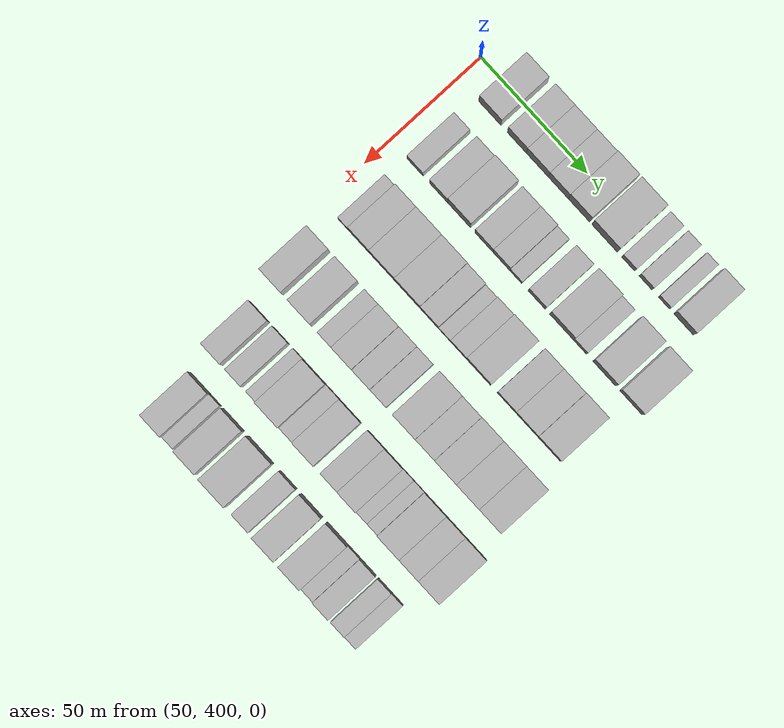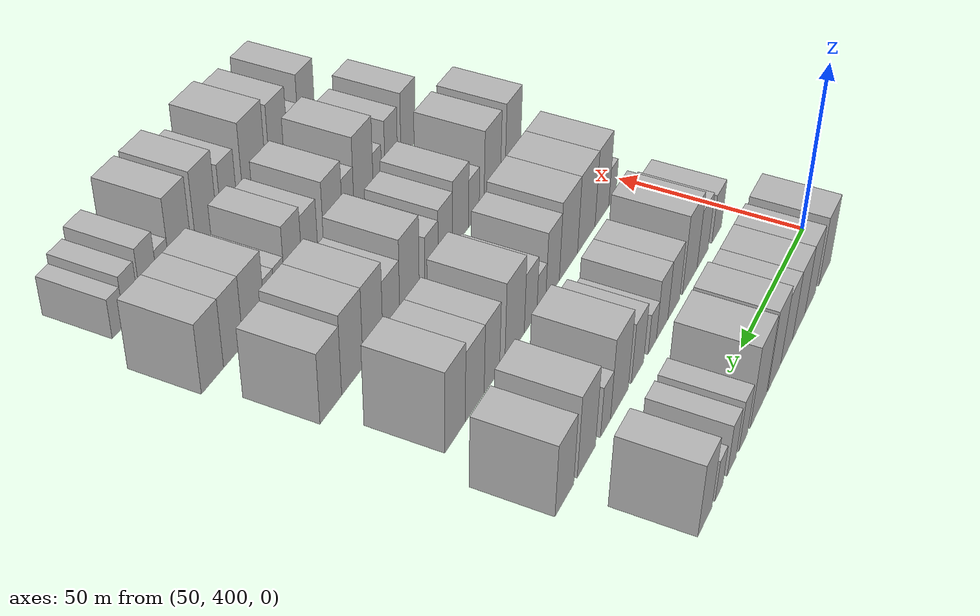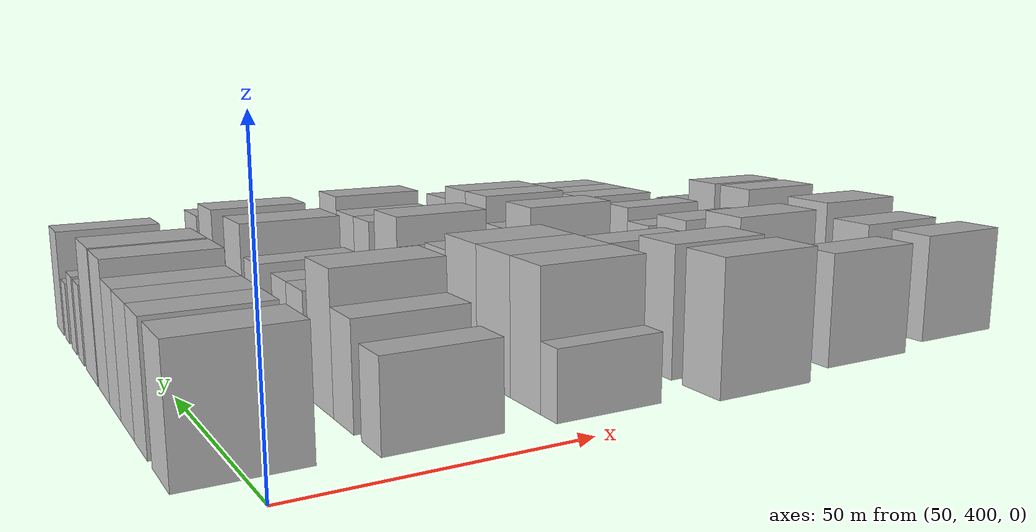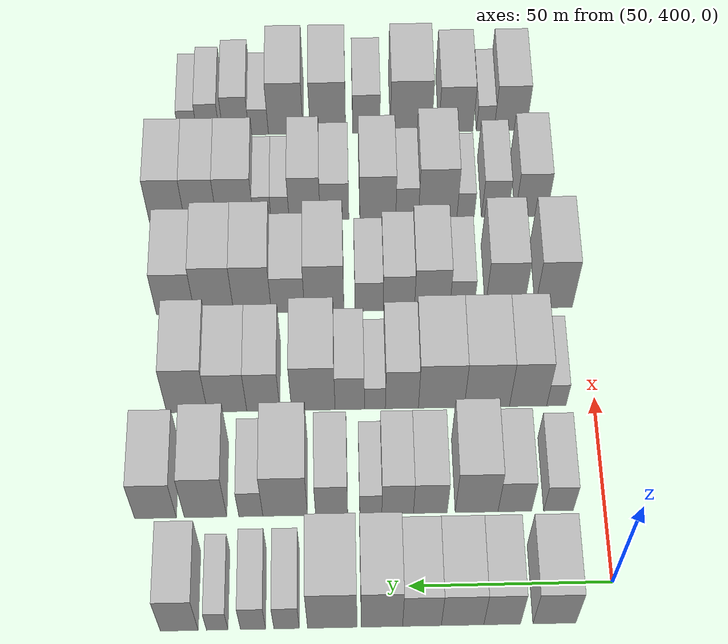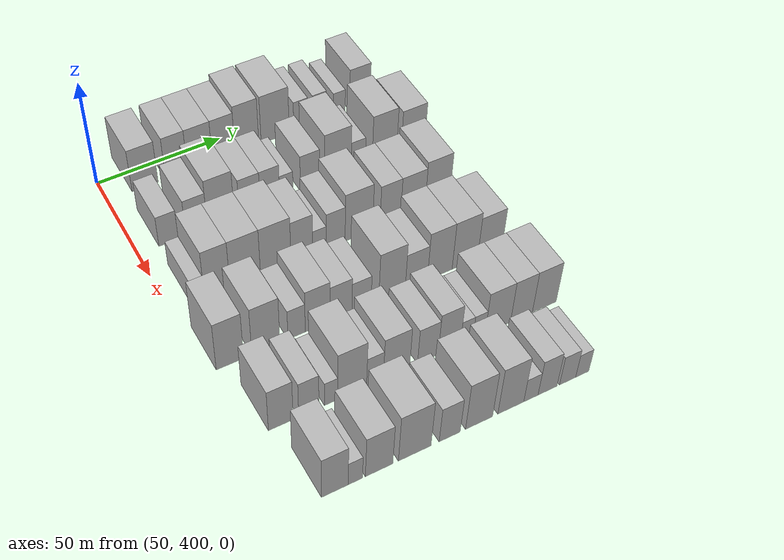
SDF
<sdf version="1.6">
 <world name="default">
  <model name="building_98">
   <static>1</static>
   <pose>50.0000 415.0534 0 0.000000 0.000000 0.000000</pose>
   <link name="link">
    <pose>0 0 10.50 0 0 0</pose>
    <collision name="collision"><geometry><box><size>20.0000 10.3913 21.0000</size></box></geometry></collision>
    <visual name="visual">
     <cast_shadows>0</cast_shadows>
     <geometry><box><size>20.0000 10.3913 21.0000</size></box></geometry>
     <material>
      <script>
       <uri>model://HANNAS_wall/materials/scripts</uri>
       <uri>model://HANNAS_wall/materials/textures</uri>
       <name>vrc/HANNAS_wall</name>
      </script>
     </material>
    </visual>
   </link>
  </model>
  <model name="building_99">
   <static>1</static>
   <pose>50.0000 427.6912 0 0.000000 0.000000 0.000000</pose>
   <link name="link">
    <pose>0 0 10.50 0 0 0</pose>
    <collision name="collision"><geometry><box><size>20.0000 8.8844 21.0000</size></box></geometry></collision>
    <visual name="visual">
     <cast_shadows>0</cast_shadows>
     <geometry><box><size>20.0000 8.8844 21.0000</size></box></geometry>
     <material>
      <script>
       <uri>model://HANNAS_wall/materials/scripts</uri>
       <uri>model://HANNAS_wall/materials/textures</uri>
       <name>vrc/HANNAS_wall</name>
      </script>
     </material>
    </visual>
   </link>
  </model>
  <model name="building_100">
   <static>1</static>
   <pose>50.0000 437.2732 0 0.000000 0.000000 0.000000</pose>
   <link name="link">
    <pose>0 0 10.50 0 0 0</pose>
    <collision name="collision"><geometry><box><size>20.0000 10.2796 21.0000</size></box></geometry></collision>
    <visual name="visual">
     <cast_shadows>0</cast_shadows>
     <geometry><box><size>20.0000 10.2796 21.0000</size></box></geometry>
     <material>
      <script>
       <uri>model://HANNAS_wall/materials/scripts</uri>
       <uri>model://HANNAS_wall/materials/textures</uri>
       <name>vrc/HANNAS_wall</name>
      </script>
     </material>
    </visual>
   </link>
  </model>
  <model name="building_101">
   <static>1</static>
   <pose>50.0000 447.0912 0 0.000000 0.000000 0.000000</pose>
   <link name="link">
    <pose>0 0 10.50 0 0 0</pose>
    <collision name="collision"><geometry><box><size>20.0000 9.3565 21.0000</size></box></geometry></collision>
    <visual name="visual">
     <cast_shadows>0</cast_shadows>
     <geometry><box><size>20.0000 9.3565 21.0000</size></box></geometry>
     <material>
      <script>
       <uri>model://HANNAS_wall/materials/scripts</uri>
       <uri>model://HANNAS_wall/materials/textures</uri>
       <name>vrc/HANNAS_wall</name>
      </script>
     </material>
    </visual>
   </link>
  </model>
  <model name="building_102">
   <static>1</static>
   <pose>50.0000 456.7532 0 0.000000 0.000000 0.000000</pose>
   <link name="link">
    <pose>0 0 12.00 0 0 0</pose>
    <collision name="collision"><geometry><box><size>20.0000 9.9675 24.0000</size></box></geometry></collision>
    <visual name="visual">
     <cast_shadows>0</cast_shadows>
     <geometry><box><size>20.0000 9.9675 24.0000</size></box></geometry>
     <material>
      <script>
       <uri>model://HANNAS_wall/materials/scripts</uri>
       <uri>model://HANNAS_wall/materials/textures</uri>
       <name>vrc/HANNAS_wall</name>
      </script>
     </material>
    </visual>
   </link>
  </model>
  <model name="building_103">
   <static>1</static>
   <pose>50.0000 468.7152 0 0.000000 0.000000 0.000000</pose>
   <link name="link">
    <pose>0 0 12.00 0 0 0</pose>
    <collision name="collision"><geometry><box><size>20.0000 11.9565 24.0000</size></box></geometry></collision>
    <visual name="visual">
     <cast_shadows>0</cast_shadows>
     <geometry><box><size>20.0000 11.9565 24.0000</size></box></geometry>
     <material>
      <script>
       <uri>model://HANNAS_wall/materials/scripts</uri>
       <uri>model://HANNAS_wall/materials/textures</uri>
       <name>vrc/HANNAS_wall</name>
      </script>
     </material>
    </visual>
   </link>
  </model>
  <model name="building_104">
   <static>1</static>
   <pose>50.0000 479.7528 0 0.000000 0.000000 0.000000</pose>
   <link name="link">
    <pose>0 0 7.50 0 0 0</pose>
    <collision name="collision"><geometry><box><size>20.0000 6.1187 15.0000</size></box></geometry></collision>
    <visual name="visual">
     <cast_shadows>0</cast_shadows>
     <geometry><box><size>20.0000 6.1187 15.0000</size></box></geometry>
     <material>
      <script>
       <uri>model://HANNAS_wall/materials/scripts</uri>
       <uri>model://HANNAS_wall/materials/textures</uri>
       <name>vrc/HANNAS_wall</name>
      </script>
     </material>
    </visual>
   </link>
  </model>
  <model name="building_105">
   <static>1</static>
   <pose>50.0000 487.8474 0 0.000000 0.000000 0.000000</pose>
   <link name="link">
    <pose>0 0 7.50 0 0 0</pose>
    <collision name="collision"><geometry><box><size>20.0000 6.0703 15.0000</size></box></geometry></collision>
    <visual name="visual">
     <cast_shadows>0</cast_shadows>
     <geometry><box><size>20.0000 6.0703 15.0000</size></box></geometry>
     <material>
      <script>
       <uri>model://HANNAS_wall/materials/scripts</uri>
       <uri>model://HANNAS_wall/materials/textures</uri>
       <name>vrc/HANNAS_wall</name>
      </script>
     </material>
    </visual>
   </link>
  </model>
  <model name="building_106">
   <static>1</static>
   <pose>50.0000 496.4762 0 0.000000 0.000000 0.000000</pose>
   <link name="link">
    <pose>0 0 6.00 0 0 0</pose>
    <collision name="collision"><geometry><box><size>20.0000 5.1874 12.0000</size></box></geometry></collision>
    <visual name="visual">
     <cast_shadows>0</cast_shadows>
     <geometry><box><size>20.0000 5.1874 12.0000</size></box></geometry>
     <material>
      <script>
       <uri>model://HANNAS_wall/materials/scripts</uri>
       <uri>model://HANNAS_wall/materials/textures</uri>
       <name>vrc/HANNAS_wall</name>
      </script>
     </material>
    </visual>
   </link>
  </model>
  <model name="building_107">
   <static>1</static>
   <pose>50.0000 505.6253 0 0.000000 0.000000 0.000000</pose>
   <link name="link">
    <pose>0 0 10.50 0 0 0</pose>
    <collision name="collision"><geometry><box><size>20.0000 9.1107 21.0000</size></box></geometry></collision>
    <visual name="visual">
     <cast_shadows>0</cast_shadows>
     <geometry><box><size>20.0000 9.1107 21.0000</size></box></geometry>
     <material>
      <script>
       <uri>model://HANNAS_wall/materials/scripts</uri>
       <uri>model://HANNAS_wall/materials/textures</uri>
       <name>vrc/HANNAS_wall</name>
      </script>
     </material>
    </visual>
   </link>
  </model>
  <model name="building_210">
   <static>1</static>
   <pose>79.0000 411.7813 0 0.000000 0.000000 0.000000</pose>
   <link name="link">
    <pose>0 0 7.50 0 0 0</pose>
    <collision name="collision"><geometry><box><size>20.0000 7.4495 15.0000</size></box></geometry></collision>
    <visual name="visual">
     <cast_shadows>0</cast_shadows>
     <geometry><box><size>20.0000 7.4495 15.0000</size></box></geometry>
     <material>
      <script>
       <uri>model://HANNAS_wall/materials/scripts</uri>
       <uri>model://HANNAS_wall/materials/textures</uri>
       <name>vrc/HANNAS_wall</name>
      </script>
     </material>
    </visual>
   </link>
  </model>
  <model name="building_211">
   <static>1</static>
   <pose>79.0000 422.7378 0 0.000000 0.000000 0.000000</pose>
   <link name="link">
    <pose>0 0 9.00 0 0 0</pose>
    <collision name="collision"><geometry><box><size>20.0000 8.4635 18.0000</size></box></geometry></collision>
    <visual name="visual">
     <cast_shadows>0</cast_shadows>
     <geometry><box><size>20.0000 8.4635 18.0000</size></box></geometry>
     <material>
      <script>
       <uri>model://HANNAS_wall/materials/scripts</uri>
       <uri>model://HANNAS_wall/materials/textures</uri>
       <name>vrc/HANNAS_wall</name>
      </script>
     </material>
    </visual>
   </link>
  </model>
  <model name="building_212">
   <static>1</static>
   <pose>79.0000 432.3272 0 0.000000 0.000000 0.000000</pose>
   <link name="link">
    <pose>0 0 12.00 0 0 0</pose>
    <collision name="collision"><geometry><box><size>20.0000 10.7153 24.0000</size></box></geometry></collision>
    <visual name="visual">
     <cast_shadows>0</cast_shadows>
     <geometry><box><size>20.0000 10.7153 24.0000</size></box></geometry>
     <material>
      <script>
       <uri>model://HANNAS_wall/materials/scripts</uri>
       <uri>model://HANNAS_wall/materials/textures</uri>
       <name>vrc/HANNAS_wall</name>
      </script>
     </material>
    </visual>
   </link>
  </model>
  <model name="building_213">
   <static>1</static>
   <pose>79.0000 443.9112 0 0.000000 0.000000 0.000000</pose>
   <link name="link">
    <pose>0 0 9.00 0 0 0</pose>
    <collision name="collision"><geometry><box><size>20.0000 8.4527 18.0000</size></box></geometry></collision>
    <visual name="visual">
     <cast_shadows>0</cast_shadows>
     <geometry><box><size>20.0000 8.4527 18.0000</size></box></geometry>
     <material>
      <script>
       <uri>model://HANNAS_wall/materials/scripts</uri>
       <uri>model://HANNAS_wall/materials/textures</uri>
       <name>vrc/HANNAS_wall</name>
      </script>
     </material>
    </visual>
   </link>
  </model>
  <model name="building_214">
   <static>1</static>
   <pose>79.0000 452.0993 0 0.000000 0.000000 0.000000</pose>
   <link name="link">
    <pose>0 0 9.00 0 0 0</pose>
    <collision name="collision"><geometry><box><size>20.0000 7.9235 18.0000</size></box></geometry></collision>
    <visual name="visual">
     <cast_shadows>0</cast_shadows>
     <geometry><box><size>20.0000 7.9235 18.0000</size></box></geometry>
     <material>
      <script>
       <uri>model://HANNAS_wall/materials/scripts</uri>
       <uri>model://HANNAS_wall/materials/textures</uri>
       <name>vrc/HANNAS_wall</name>
      </script>
     </material>
    </visual>
   </link>
  </model>
  <model name="building_215">
   <static>1</static>
   <pose>79.0000 458.8231 0 0.000000 0.000000 0.000000</pose>
   <link name="link">
    <pose>0 0 6.00 0 0 0</pose>
    <collision name="collision"><geometry><box><size>20.0000 5.5241 12.0000</size></box></geometry></collision>
    <visual name="visual">
     <cast_shadows>0</cast_shadows>
     <geometry><box><size>20.0000 5.5241 12.0000</size></box></geometry>
     <material>
      <script>
       <uri>model://HANNAS_wall/materials/scripts</uri>
       <uri>model://HANNAS_wall/materials/textures</uri>
       <name>vrc/HANNAS_wall</name>
      </script>
     </material>
    </visual>
   </link>
  </model>
  <model name="building_216">
   <static>1</static>
   <pose>79.0000 468.6043 0 0.000000 0.000000 0.000000</pose>
   <link name="link">
    <pose>0 0 9.00 0 0 0</pose>
    <collision name="collision"><geometry><box><size>20.0000 8.0382 18.0000</size></box></geometry></collision>
    <visual name="visual">
     <cast_shadows>0</cast_shadows>
     <geometry><box><size>20.0000 8.0382 18.0000</size></box></geometry>
     <material>
      <script>
       <uri>model://HANNAS_wall/materials/scripts</uri>
       <uri>model://HANNAS_wall/materials/textures</uri>
       <name>vrc/HANNAS_wall</name>
      </script>
     </material>
    </visual>
   </link>
  </model>
  <model name="building_217">
   <static>1</static>
   <pose>79.0000 480.2124 0 0.000000 0.000000 0.000000</pose>
   <link name="link">
    <pose>0 0 12.00 0 0 0</pose>
    <collision name="collision"><geometry><box><size>20.0000 11.1780 24.0000</size></box></geometry></collision>
    <visual name="visual">
     <cast_shadows>0</cast_shadows>
     <geometry><box><size>20.0000 11.1780 24.0000</size></box></geometry>
     <material>
      <script>
       <uri>model://HANNAS_wall/materials/scripts</uri>
       <uri>model://HANNAS_wall/materials/textures</uri>
       <name>vrc/HANNAS_wall</name>
      </script>
     </material>
    </visual>
   </link>
  </model>
  <model name="building_218">
   <static>1</static>
   <pose>79.0000 488.8057 0 0.000000 0.000000 0.000000</pose>
   <link name="link">
    <pose>0 0 7.50 0 0 0</pose>
    <collision name="collision"><geometry><box><size>20.0000 6.0087 15.0000</size></box></geometry></collision>
    <visual name="visual">
     <cast_shadows>0</cast_shadows>
     <geometry><box><size>20.0000 6.0087 15.0000</size></box></geometry>
     <material>
      <script>
       <uri>model://HANNAS_wall/materials/scripts</uri>
       <uri>model://HANNAS_wall/materials/textures</uri>
       <name>vrc/HANNAS_wall</name>
      </script>
     </material>
    </visual>
   </link>
  </model>
  <model name="building_219">
   <static>1</static>
   <pose>79.0000 500.1120 0 0.000000 0.000000 0.000000</pose>
   <link name="link">
    <pose>0 0 12.00 0 0 0</pose>
    <collision name="collision"><geometry><box><size>20.0000 10.6038 24.0000</size></box></geometry></collision>
    <visual name="visual">
     <cast_shadows>0</cast_shadows>
     <geometry><box><size>20.0000 10.6038 24.0000</size></box></geometry>
     <material>
      <script>
       <uri>model://HANNAS_wall/materials/scripts</uri>
       <uri>model://HANNAS_wall/materials/textures</uri>
       <name>vrc/HANNAS_wall</name>
      </script>
     </material>
    </visual>
   </link>
  </model>
  <model name="building_220">
   <static>1</static>
   <pose>79.0000 512.6189 0 0.000000 0.000000 0.000000</pose>
   <link name="link">
    <pose>0 0 10.50 0 0 0</pose>
    <collision name="collision"><geometry><box><size>20.0000 10.4100 21.0000</size></box></geometry></collision>
    <visual name="visual">
     <cast_shadows>0</cast_shadows>
     <geometry><box><size>20.0000 10.4100 21.0000</size></box></geometry>
     <material>
      <script>
       <uri>model://HANNAS_wall/materials/scripts</uri>
       <uri>model://HANNAS_wall/materials/textures</uri>
       <name>vrc/HANNAS_wall</name>
      </script>
     </material>
    </visual>
   </link>
  </model>
  <model name="building_317">
   <static>1</static>
   <pose>108.0000 410.0519 0 0.000000 0.000000 0.000000</pose>
   <link name="link">
    <pose>0 0 6.00 0 0 0</pose>
    <collision name="collision"><geometry><box><size>20.0000 5.0231 12.0000</size></box></geometry></collision>
    <visual name="visual">
     <cast_shadows>0</cast_shadows>
     <geometry><box><size>20.0000 5.0231 12.0000</size></box></geometry>
     <material>
      <script>
       <uri>model://HANNAS_wall/materials/scripts</uri>
       <uri>model://HANNAS_wall/materials/textures</uri>
       <name>vrc/HANNAS_wall</name>
      </script>
     </material>
    </visual>
   </link>
  </model>
  <model name="building_318">
   <static>1</static>
   <pose>108.0000 417.3986 0 0.000000 0.000000 0.000000</pose>
   <link name="link">
    <pose>0 0 12.00 0 0 0</pose>
    <collision name="collision"><geometry><box><size>20.0000 9.6702 24.0000</size></box></geometry></collision>
    <visual name="visual">
     <cast_shadows>0</cast_shadows>
     <geometry><box><size>20.0000 9.6702 24.0000</size></box></geometry>
     <material>
      <script>
       <uri>model://HANNAS_wall/materials/scripts</uri>
       <uri>model://HANNAS_wall/materials/textures</uri>
       <name>vrc/HANNAS_wall</name>
      </script>
     </material>
    </visual>
   </link>
  </model>
  <model name="building_319">
   <static>1</static>
   <pose>108.0000 428.1016 0 0.000000 0.000000 0.000000</pose>
   <link name="link">
    <pose>0 0 12.00 0 0 0</pose>
    <collision name="collision"><geometry><box><size>20.0000 11.7359 24.0000</size></box></geometry></collision>
    <visual name="visual">
     <cast_shadows>0</cast_shadows>
     <geometry><box><size>20.0000 11.7359 24.0000</size></box></geometry>
     <material>
      <script>
       <uri>model://HANNAS_wall/materials/scripts</uri>
       <uri>model://HANNAS_wall/materials/textures</uri>
       <name>vrc/HANNAS_wall</name>
      </script>
     </material>
    </visual>
   </link>
  </model>
  <model name="building_320">
   <static>1</static>
   <pose>108.0000 439.9159 0 0.000000 0.000000 0.000000</pose>
   <link name="link">
    <pose>0 0 12.00 0 0 0</pose>
    <collision name="collision"><geometry><box><size>20.0000 11.8927 24.0000</size></box></geometry></collision>
    <visual name="visual">
     <cast_shadows>0</cast_shadows>
     <geometry><box><size>20.0000 11.8927 24.0000</size></box></geometry>
     <material>
      <script>
       <uri>model://HANNAS_wall/materials/scripts</uri>
       <uri>model://HANNAS_wall/materials/textures</uri>
       <name>vrc/HANNAS_wall</name>
      </script>
     </material>
    </visual>
   </link>
  </model>
  <model name="building_321">
   <static>1</static>
   <pose>108.0000 450.1446 0 0.000000 0.000000 0.000000</pose>
   <link name="link">
    <pose>0 0 10.50 0 0 0</pose>
    <collision name="collision"><geometry><box><size>20.0000 8.5648 21.0000</size></box></geometry></collision>
    <visual name="visual">
     <cast_shadows>0</cast_shadows>
     <geometry><box><size>20.0000 8.5648 21.0000</size></box></geometry>
     <material>
      <script>
       <uri>model://HANNAS_wall/materials/scripts</uri>
       <uri>model://HANNAS_wall/materials/textures</uri>
       <name>vrc/HANNAS_wall</name>
      </script>
     </material>
    </visual>
   </link>
  </model>
  <model name="building_322">
   <static>1</static>
   <pose>108.0000 457.1525 0 0.000000 0.000000 0.000000</pose>
   <link name="link">
    <pose>0 0 6.00 0 0 0</pose>
    <collision name="collision"><geometry><box><size>20.0000 5.4508 12.0000</size></box></geometry></collision>
    <visual name="visual">
     <cast_shadows>0</cast_shadows>
     <geometry><box><size>20.0000 5.4508 12.0000</size></box></geometry>
     <material>
      <script>
       <uri>model://HANNAS_wall/materials/scripts</uri>
       <uri>model://HANNAS_wall/materials/textures</uri>
       <name>vrc/HANNAS_wall</name>
      </script>
     </material>
    </visual>
   </link>
  </model>
  <model name="building_323">
   <static>1</static>
   <pose>108.0000 463.6574 0 0.000000 0.000000 0.000000</pose>
   <link name="link">
    <pose>0 0 9.00 0 0 0</pose>
    <collision name="collision"><geometry><box><size>20.0000 7.5591 18.0000</size></box></geometry></collision>
    <visual name="visual">
     <cast_shadows>0</cast_shadows>
     <geometry><box><size>20.0000 7.5591 18.0000</size></box></geometry>
     <material>
      <script>
       <uri>model://HANNAS_wall/materials/scripts</uri>
       <uri>model://HANNAS_wall/materials/textures</uri>
       <name>vrc/HANNAS_wall</name>
      </script>
     </material>
    </visual>
   </link>
  </model>
  <model name="building_324">
   <static>1</static>
   <pose>108.0000 473.0711 0 0.000000 0.000000 0.000000</pose>
   <link name="link">
    <pose>0 0 12.00 0 0 0</pose>
    <collision name="collision"><geometry><box><size>20.0000 11.2682 24.0000</size></box></geometry></collision>
    <visual name="visual">
     <cast_shadows>0</cast_shadows>
     <geometry><box><size>20.0000 11.2682 24.0000</size></box></geometry>
     <material>
      <script>
       <uri>model://HANNAS_wall/materials/scripts</uri>
       <uri>model://HANNAS_wall/materials/textures</uri>
       <name>vrc/HANNAS_wall</name>
      </script>
     </material>
    </visual>
   </link>
  </model>
  <model name="building_325">
   <static>1</static>
   <pose>108.0000 485.9955 0 0.000000 0.000000 0.000000</pose>
   <link name="link">
    <pose>0 0 10.50 0 0 0</pose>
    <collision name="collision"><geometry><box><size>20.0000 8.5806 21.0000</size></box></geometry></collision>
    <visual name="visual">
     <cast_shadows>0</cast_shadows>
     <geometry><box><size>20.0000 8.5806 21.0000</size></box></geometry>
     <material>
      <script>
       <uri>model://HANNAS_wall/materials/scripts</uri>
       <uri>model://HANNAS_wall/materials/textures</uri>
       <name>vrc/HANNAS_wall</name>
      </script>
     </material>
    </visual>
   </link>
  </model>
  <model name="building_326">
   <static>1</static>
   <pose>108.0000 495.3850 0 0.000000 0.000000 0.000000</pose>
   <link name="link">
    <pose>0 0 10.50 0 0 0</pose>
    <collision name="collision"><geometry><box><size>20.0000 10.1984 21.0000</size></box></geometry></collision>
    <visual name="visual">
     <cast_shadows>0</cast_shadows>
     <geometry><box><size>20.0000 10.1984 21.0000</size></box></geometry>
     <material>
      <script>
       <uri>model://HANNAS_wall/materials/scripts</uri>
       <uri>model://HANNAS_wall/materials/textures</uri>
       <name>vrc/HANNAS_wall</name>
      </script>
     </material>
    </visual>
   </link>
  </model>
  <model name="building_327">
   <static>1</static>
   <pose>108.0000 505.7415 0 0.000000 0.000000 0.000000</pose>
   <link name="link">
    <pose>0 0 12.00 0 0 0</pose>
    <collision name="collision"><geometry><box><size>20.0000 10.5147 24.0000</size></box></geometry></collision>
    <visual name="visual">
     <cast_shadows>0</cast_shadows>
     <geometry><box><size>20.0000 10.5147 24.0000</size></box></geometry>
     <material>
      <script>
       <uri>model://HANNAS_wall/materials/scripts</uri>
       <uri>model://HANNAS_wall/materials/textures</uri>
       <name>vrc/HANNAS_wall</name>
      </script>
     </material>
    </visual>
   </link>
  </model>
  <model name="building_436">
   <static>1</static>
   <pose>137.0000 408.4920 0 0.000000 0.000000 0.000000</pose>
   <link name="link">
    <pose>0 0 12.00 0 0 0</pose>
    <collision name="collision"><geometry><box><size>20.0000 9.9865 24.0000</size></box></geometry></collision>
    <visual name="visual">
     <cast_shadows>0</cast_shadows>
     <geometry><box><size>20.0000 9.9865 24.0000</size></box></geometry>
     <material>
      <script>
       <uri>model://HANNAS_wall/materials/scripts</uri>
       <uri>model://HANNAS_wall/materials/textures</uri>
       <name>vrc/HANNAS_wall</name>
      </script>
     </material>
    </visual>
   </link>
  </model>
  <model name="building_437">
   <static>1</static>
   <pose>137.0000 421.6860 0 0.000000 0.000000 0.000000</pose>
   <link name="link">
    <pose>0 0 12.00 0 0 0</pose>
    <collision name="collision"><geometry><box><size>20.0000 10.4016 24.0000</size></box></geometry></collision>
    <visual name="visual">
     <cast_shadows>0</cast_shadows>
     <geometry><box><size>20.0000 10.4016 24.0000</size></box></geometry>
     <material>
      <script>
       <uri>model://HANNAS_wall/materials/scripts</uri>
       <uri>model://HANNAS_wall/materials/textures</uri>
       <name>vrc/HANNAS_wall</name>
      </script>
     </material>
    </visual>
   </link>
  </model>
  <model name="building_438">
   <static>1</static>
   <pose>137.0000 433.1537 0 0.000000 0.000000 0.000000</pose>
   <link name="link">
    <pose>0 0 7.50 0 0 0</pose>
    <collision name="collision"><geometry><box><size>20.0000 6.5338 15.0000</size></box></geometry></collision>
    <visual name="visual">
     <cast_shadows>0</cast_shadows>
     <geometry><box><size>20.0000 6.5338 15.0000</size></box></geometry>
     <material>
      <script>
       <uri>model://HANNAS_wall/materials/scripts</uri>
       <uri>model://HANNAS_wall/materials/textures</uri>
       <name>vrc/HANNAS_wall</name>
      </script>
     </material>
    </visual>
   </link>
  </model>
  <model name="building_439">
   <static>1</static>
   <pose>137.0000 441.1532 0 0.000000 0.000000 0.000000</pose>
   <link name="link">
    <pose>0 0 10.50 0 0 0</pose>
    <collision name="collision"><geometry><box><size>20.0000 9.4651 21.0000</size></box></geometry></collision>
    <visual name="visual">
     <cast_shadows>0</cast_shadows>
     <geometry><box><size>20.0000 9.4651 21.0000</size></box></geometry>
     <material>
      <script>
       <uri>model://HANNAS_wall/materials/scripts</uri>
       <uri>model://HANNAS_wall/materials/textures</uri>
       <name>vrc/HANNAS_wall</name>
      </script>
     </material>
    </visual>
   </link>
  </model>
  <model name="building_440">
   <static>1</static>
   <pose>137.0000 450.0791 0 0.000000 0.000000 0.000000</pose>
   <link name="link">
    <pose>0 0 9.00 0 0 0</pose>
    <collision name="collision"><geometry><box><size>20.0000 8.3867 18.0000</size></box></geometry></collision>
    <visual name="visual">
     <cast_shadows>0</cast_shadows>
     <geometry><box><size>20.0000 8.3867 18.0000</size></box></geometry>
     <material>
      <script>
       <uri>model://HANNAS_wall/materials/scripts</uri>
       <uri>model://HANNAS_wall/materials/textures</uri>
       <name>vrc/HANNAS_wall</name>
      </script>
     </material>
    </visual>
   </link>
  </model>
  <model name="building_441">
   <static>1</static>
   <pose>137.0000 458.0188 0 0.000000 0.000000 0.000000</pose>
   <link name="link">
    <pose>0 0 7.50 0 0 0</pose>
    <collision name="collision"><geometry><box><size>20.0000 7.4929 15.0000</size></box></geometry></collision>
    <visual name="visual">
     <cast_shadows>0</cast_shadows>
     <geometry><box><size>20.0000 7.4929 15.0000</size></box></geometry>
     <material>
      <script>
       <uri>model://HANNAS_wall/materials/scripts</uri>
       <uri>model://HANNAS_wall/materials/textures</uri>
       <name>vrc/HANNAS_wall</name>
      </script>
     </material>
    </visual>
   </link>
  </model>
  <model name="building_442">
   <static>1</static>
   <pose>137.0000 470.0172 0 0.000000 0.000000 0.000000</pose>
   <link name="link">
    <pose>0 0 12.00 0 0 0</pose>
    <collision name="collision"><geometry><box><size>20.0000 10.5038 24.0000</size></box></geometry></collision>
    <visual name="visual">
     <cast_shadows>0</cast_shadows>
     <geometry><box><size>20.0000 10.5038 24.0000</size></box></geometry>
     <material>
      <script>
       <uri>model://HANNAS_wall/materials/scripts</uri>
       <uri>model://HANNAS_wall/materials/textures</uri>
       <name>vrc/HANNAS_wall</name>
      </script>
     </material>
    </visual>
   </link>
  </model>
  <model name="building_443">
   <static>1</static>
   <pose>137.0000 479.7139 0 0.000000 0.000000 0.000000</pose>
   <link name="link">
    <pose>0 0 9.00 0 0 0</pose>
    <collision name="collision"><geometry><box><size>20.0000 8.8898 18.0000</size></box></geometry></collision>
    <visual name="visual">
     <cast_shadows>0</cast_shadows>
     <geometry><box><size>20.0000 8.8898 18.0000</size></box></geometry>
     <material>
      <script>
       <uri>model://HANNAS_wall/materials/scripts</uri>
       <uri>model://HANNAS_wall/materials/textures</uri>
       <name>vrc/HANNAS_wall</name>
      </script>
     </material>
    </visual>
   </link>
  </model>
  <model name="building_444">
   <static>1</static>
   <pose>137.0000 489.1917 0 0.000000 0.000000 0.000000</pose>
   <link name="link">
    <pose>0 0 12.00 0 0 0</pose>
    <collision name="collision"><geometry><box><size>20.0000 10.0659 24.0000</size></box></geometry></collision>
    <visual name="visual">
     <cast_shadows>0</cast_shadows>
     <geometry><box><size>20.0000 10.0659 24.0000</size></box></geometry>
     <material>
      <script>
       <uri>model://HANNAS_wall/materials/scripts</uri>
       <uri>model://HANNAS_wall/materials/textures</uri>
       <name>vrc/HANNAS_wall</name>
      </script>
     </material>
    </visual>
   </link>
  </model>
  <model name="building_445">
   <static>1</static>
   <pose>137.0000 499.4671 0 0.000000 0.000000 0.000000</pose>
   <link name="link">
    <pose>0 0 12.00 0 0 0</pose>
    <collision name="collision"><geometry><box><size>20.0000 10.4848 24.0000</size></box></geometry></collision>
    <visual name="visual">
     <cast_shadows>0</cast_shadows>
     <geometry><box><size>20.0000 10.4848 24.0000</size></box></geometry>
     <material>
      <script>
       <uri>model://HANNAS_wall/materials/scripts</uri>
       <uri>model://HANNAS_wall/materials/textures</uri>
       <name>vrc/HANNAS_wall</name>
      </script>
     </material>
    </visual>
   </link>
  </model>
  <model name="building_446">
   <static>1</static>
   <pose>137.0000 509.8148 0 0.000000 0.000000 0.000000</pose>
   <link name="link">
    <pose>0 0 10.50 0 0 0</pose>
    <collision name="collision"><geometry><box><size>20.0000 10.2107 21.0000</size></box></geometry></collision>
    <visual name="visual">
     <cast_shadows>0</cast_shadows>
     <geometry><box><size>20.0000 10.2107 21.0000</size></box></geometry>
     <material>
      <script>
       <uri>model://HANNAS_wall/materials/scripts</uri>
       <uri>model://HANNAS_wall/materials/textures</uri>
       <name>vrc/HANNAS_wall</name>
      </script>
     </material>
    </visual>
   </link>
  </model>
  <model name="building_552">
   <static>1</static>
   <pose>166.0000 412.5836 0 0.000000 0.000000 0.000000</pose>
   <link name="link">
    <pose>0 0 10.50 0 0 0</pose>
    <collision name="collision"><geometry><box><size>20.0000 8.7968 21.0000</size></box></geometry></collision>
    <visual name="visual">
     <cast_shadows>0</cast_shadows>
     <geometry><box><size>20.0000 8.7968 21.0000</size></box></geometry>
     <material>
      <script>
       <uri>model://HANNAS_wall/materials/scripts</uri>
       <uri>model://HANNAS_wall/materials/textures</uri>
       <name>vrc/HANNAS_wall</name>
      </script>
     </material>
    </visual>
   </link>
  </model>
  <model name="building_553">
   <static>1</static>
   <pose>166.0000 422.6330 0 0.000000 0.000000 0.000000</pose>
   <link name="link">
    <pose>0 0 9.00 0 0 0</pose>
    <collision name="collision"><geometry><box><size>20.0000 7.3021 18.0000</size></box></geometry></collision>
    <visual name="visual">
     <cast_shadows>0</cast_shadows>
     <geometry><box><size>20.0000 7.3021 18.0000</size></box></geometry>
     <material>
      <script>
       <uri>model://HANNAS_wall/materials/scripts</uri>
       <uri>model://HANNAS_wall/materials/textures</uri>
       <name>vrc/HANNAS_wall</name>
      </script>
     </material>
    </visual>
   </link>
  </model>
  <model name="building_554">
   <static>1</static>
   <pose>166.0000 430.6932 0 0.000000 0.000000 0.000000</pose>
   <link name="link">
    <pose>0 0 6.00 0 0 0</pose>
    <collision name="collision"><geometry><box><size>20.0000 4.8182 12.0000</size></box></geometry></collision>
    <visual name="visual">
     <cast_shadows>0</cast_shadows>
     <geometry><box><size>20.0000 4.8182 12.0000</size></box></geometry>
     <material>
      <script>
       <uri>model://HANNAS_wall/materials/scripts</uri>
       <uri>model://HANNAS_wall/materials/textures</uri>
       <name>vrc/HANNAS_wall</name>
      </script>
     </material>
    </visual>
   </link>
  </model>
  <model name="building_555">
   <static>1</static>
   <pose>166.0000 438.4333 0 0.000000 0.000000 0.000000</pose>
   <link name="link">
    <pose>0 0 12.00 0 0 0</pose>
    <collision name="collision"><geometry><box><size>20.0000 10.6619 24.0000</size></box></geometry></collision>
    <visual name="visual">
     <cast_shadows>0</cast_shadows>
     <geometry><box><size>20.0000 10.6619 24.0000</size></box></geometry>
     <material>
      <script>
       <uri>model://HANNAS_wall/materials/scripts</uri>
       <uri>model://HANNAS_wall/materials/textures</uri>
       <name>vrc/HANNAS_wall</name>
      </script>
     </material>
    </visual>
   </link>
  </model>
  <model name="building_556">
   <static>1</static>
   <pose>166.0000 446.8958 0 0.000000 0.000000 0.000000</pose>
   <link name="link">
    <pose>0 0 7.50 0 0 0</pose>
    <collision name="collision"><geometry><box><size>20.0000 6.2632 15.0000</size></box></geometry></collision>
    <visual name="visual">
     <cast_shadows>0</cast_shadows>
     <geometry><box><size>20.0000 6.2632 15.0000</size></box></geometry>
     <material>
      <script>
       <uri>model://HANNAS_wall/materials/scripts</uri>
       <uri>model://HANNAS_wall/materials/textures</uri>
       <name>vrc/HANNAS_wall</name>
      </script>
     </material>
    </visual>
   </link>
  </model>
  <model name="building_557">
   <static>1</static>
   <pose>166.0000 455.0126 0 0.000000 0.000000 0.000000</pose>
   <link name="link">
    <pose>0 0 10.50 0 0 0</pose>
    <collision name="collision"><geometry><box><size>20.0000 9.9702 21.0000</size></box></geometry></collision>
    <visual name="visual">
     <cast_shadows>0</cast_shadows>
     <geometry><box><size>20.0000 9.9702 21.0000</size></box></geometry>
     <material>
      <script>
       <uri>model://HANNAS_wall/materials/scripts</uri>
       <uri>model://HANNAS_wall/materials/textures</uri>
       <name>vrc/HANNAS_wall</name>
      </script>
     </material>
    </visual>
   </link>
  </model>
  <model name="building_558">
   <static>1</static>
   <pose>166.0000 466.9604 0 0.000000 0.000000 0.000000</pose>
   <link name="link">
    <pose>0 0 9.00 0 0 0</pose>
    <collision name="collision"><geometry><box><size>20.0000 7.9254 18.0000</size></box></geometry></collision>
    <visual name="visual">
     <cast_shadows>0</cast_shadows>
     <geometry><box><size>20.0000 7.9254 18.0000</size></box></geometry>
     <material>
      <script>
       <uri>model://HANNAS_wall/materials/scripts</uri>
       <uri>model://HANNAS_wall/materials/textures</uri>
       <name>vrc/HANNAS_wall</name>
      </script>
     </material>
    </visual>
   </link>
  </model>
  <model name="building_559">
   <static>1</static>
   <pose>166.0000 475.2242 0 0.000000 0.000000 0.000000</pose>
   <link name="link">
    <pose>0 0 10.50 0 0 0</pose>
    <collision name="collision"><geometry><box><size>20.0000 8.6022 21.0000</size></box></geometry></collision>
    <visual name="visual">
     <cast_shadows>0</cast_shadows>
     <geometry><box><size>20.0000 8.6022 21.0000</size></box></geometry>
     <material>
      <script>
       <uri>model://HANNAS_wall/materials/scripts</uri>
       <uri>model://HANNAS_wall/materials/textures</uri>
       <name>vrc/HANNAS_wall</name>
      </script>
     </material>
    </visual>
   </link>
  </model>
  <model name="building_560">
   <static>1</static>
   <pose>166.0000 482.0080 0 0.000000 0.000000 0.000000</pose>
   <link name="link">
    <pose>0 0 6.00 0 0 0</pose>
    <collision name="collision"><geometry><box><size>20.0000 4.9654 12.0000</size></box></geometry></collision>
    <visual name="visual">
     <cast_shadows>0</cast_shadows>
     <geometry><box><size>20.0000 4.9654 12.0000</size></box></geometry>
     <material>
      <script>
       <uri>model://HANNAS_wall/materials/scripts</uri>
       <uri>model://HANNAS_wall/materials/textures</uri>
       <name>vrc/HANNAS_wall</name>
      </script>
     </material>
    </visual>
   </link>
  </model>
  <model name="building_561">
   <static>1</static>
   <pose>166.0000 486.9217 0 0.000000 0.000000 0.000000</pose>
   <link name="link">
    <pose>0 0 6.00 0 0 0</pose>
    <collision name="collision"><geometry><box><size>20.0000 4.8622 12.0000</size></box></geometry></collision>
    <visual name="visual">
     <cast_shadows>0</cast_shadows>
     <geometry><box><size>20.0000 4.8622 12.0000</size></box></geometry>
     <material>
      <script>
       <uri>model://HANNAS_wall/materials/scripts</uri>
       <uri>model://HANNAS_wall/materials/textures</uri>
       <name>vrc/HANNAS_wall</name>
      </script>
     </material>
    </visual>
   </link>
  </model>
  <model name="building_562">
   <static>1</static>
   <pose>166.0000 494.4430 0 0.000000 0.000000 0.000000</pose>
   <link name="link">
    <pose>0 0 10.50 0 0 0</pose>
    <collision name="collision"><geometry><box><size>20.0000 10.1804 21.0000</size></box></geometry></collision>
    <visual name="visual">
     <cast_shadows>0</cast_shadows>
     <geometry><box><size>20.0000 10.1804 21.0000</size></box></geometry>
     <material>
      <script>
       <uri>model://HANNAS_wall/materials/scripts</uri>
       <uri>model://HANNAS_wall/materials/textures</uri>
       <name>vrc/HANNAS_wall</name>
      </script>
     </material>
    </visual>
   </link>
  </model>
  <model name="building_563">
   <static>1</static>
   <pose>166.0000 503.9563 0 0.000000 0.000000 0.000000</pose>
   <link name="link">
    <pose>0 0 10.50 0 0 0</pose>
    <collision name="collision"><geometry><box><size>20.0000 8.8462 21.0000</size></box></geometry></collision>
    <visual name="visual">
     <cast_shadows>0</cast_shadows>
     <geometry><box><size>20.0000 8.8462 21.0000</size></box></geometry>
     <material>
      <script>
       <uri>model://HANNAS_wall/materials/scripts</uri>
       <uri>model://HANNAS_wall/materials/textures</uri>
       <name>vrc/HANNAS_wall</name>
      </script>
     </material>
    </visual>
   </link>
  </model>
  <model name="building_564">
   <static>1</static>
   <pose>166.0000 513.2491 0 0.000000 0.000000 0.000000</pose>
   <link name="link">
    <pose>0 0 10.50 0 0 0</pose>
    <collision name="collision"><geometry><box><size>20.0000 9.7396 21.0000</size></box></geometry></collision>
    <visual name="visual">
     <cast_shadows>0</cast_shadows>
     <geometry><box><size>20.0000 9.7396 21.0000</size></box></geometry>
     <material>
      <script>
       <uri>model://HANNAS_wall/materials/scripts</uri>
       <uri>model://HANNAS_wall/materials/textures</uri>
       <name>vrc/HANNAS_wall</name>
      </script>
     </material>
    </visual>
   </link>
  </model>
  <model name="building_663">
   <static>1</static>
   <pose>195.0000 416.4576 0 0.000000 0.000000 0.000000</pose>
   <link name="link">
    <pose>0 0 10.50 0 0 0</pose>
    <collision name="collision"><geometry><box><size>20.0000 9.2261 21.0000</size></box></geometry></collision>
    <visual name="visual">
     <cast_shadows>0</cast_shadows>
     <geometry><box><size>20.0000 9.2261 21.0000</size></box></geometry>
     <material>
      <script>
       <uri>model://HANNAS_wall/materials/scripts</uri>
       <uri>model://HANNAS_wall/materials/textures</uri>
       <name>vrc/HANNAS_wall</name>
      </script>
     </material>
    </visual>
   </link>
  </model>
  <model name="building_664">
   <static>1</static>
   <pose>195.0000 423.6026 0 0.000000 0.000000 0.000000</pose>
   <link name="link">
    <pose>0 0 6.00 0 0 0</pose>
    <collision name="collision"><geometry><box><size>20.0000 5.0640 12.0000</size></box></geometry></collision>
    <visual name="visual">
     <cast_shadows>0</cast_shadows>
     <geometry><box><size>20.0000 5.0640 12.0000</size></box></geometry>
     <material>
      <script>
       <uri>model://HANNAS_wall/materials/scripts</uri>
       <uri>model://HANNAS_wall/materials/textures</uri>
       <name>vrc/HANNAS_wall</name>
      </script>
     </material>
    </visual>
   </link>
  </model>
  <model name="building_665">
   <static>1</static>
   <pose>195.0000 432.0262 0 0.000000 0.000000 0.000000</pose>
   <link name="link">
    <pose>0 0 10.50 0 0 0</pose>
    <collision name="collision"><geometry><box><size>20.0000 9.7831 21.0000</size></box></geometry></collision>
    <visual name="visual">
     <cast_shadows>0</cast_shadows>
     <geometry><box><size>20.0000 9.7831 21.0000</size></box></geometry>
     <material>
      <script>
       <uri>model://HANNAS_wall/materials/scripts</uri>
       <uri>model://HANNAS_wall/materials/textures</uri>
       <name>vrc/HANNAS_wall</name>
      </script>
     </material>
    </visual>
   </link>
  </model>
  <model name="building_666">
   <static>1</static>
   <pose>195.0000 444.8223 0 0.000000 0.000000 0.000000</pose>
   <link name="link">
    <pose>0 0 12.00 0 0 0</pose>
    <collision name="collision"><geometry><box><size>20.0000 11.8092 24.0000</size></box></geometry></collision>
    <visual name="visual">
     <cast_shadows>0</cast_shadows>
     <geometry><box><size>20.0000 11.8092 24.0000</size></box></geometry>
     <material>
      <script>
       <uri>model://HANNAS_wall/materials/scripts</uri>
       <uri>model://HANNAS_wall/materials/textures</uri>
       <name>vrc/HANNAS_wall</name>
      </script>
     </material>
    </visual>
   </link>
  </model>
  <model name="building_667">
   <static>1</static>
   <pose>195.0000 457.6071 0 0.000000 0.000000 0.000000</pose>
   <link name="link">
    <pose>0 0 9.00 0 0 0</pose>
    <collision name="collision"><geometry><box><size>20.0000 7.7603 18.0000</size></box></geometry></collision>
    <visual name="visual">
     <cast_shadows>0</cast_shadows>
     <geometry><box><size>20.0000 7.7603 18.0000</size></box></geometry>
     <material>
      <script>
       <uri>model://HANNAS_wall/materials/scripts</uri>
       <uri>model://HANNAS_wall/materials/textures</uri>
       <name>vrc/HANNAS_wall</name>
      </script>
     </material>
    </visual>
   </link>
  </model>
  <model name="building_668">
   <static>1</static>
   <pose>195.0000 468.5570 0 0.000000 0.000000 0.000000</pose>
   <link name="link">
    <pose>0 0 12.00 0 0 0</pose>
    <collision name="collision"><geometry><box><size>20.0000 10.1395 24.0000</size></box></geometry></collision>
    <visual name="visual">
     <cast_shadows>0</cast_shadows>
     <geometry><box><size>20.0000 10.1395 24.0000</size></box></geometry>
     <material>
      <script>
       <uri>model://HANNAS_wall/materials/scripts</uri>
       <uri>model://HANNAS_wall/materials/textures</uri>
       <name>vrc/HANNAS_wall</name>
      </script>
     </material>
    </visual>
   </link>
  </model>
  <model name="building_669">
   <static>1</static>
   <pose>195.0000 480.5824 0 0.000000 0.000000 0.000000</pose>
   <link name="link">
    <pose>0 0 12.00 0 0 0</pose>
    <collision name="collision"><geometry><box><size>20.0000 9.9113 24.0000</size></box></geometry></collision>
    <visual name="visual">
     <cast_shadows>0</cast_shadows>
     <geometry><box><size>20.0000 9.9113 24.0000</size></box></geometry>
     <material>
      <script>
       <uri>model://HANNAS_wall/materials/scripts</uri>
       <uri>model://HANNAS_wall/materials/textures</uri>
       <name>vrc/HANNAS_wall</name>
      </script>
     </material>
    </visual>
   </link>
  </model>
  <model name="building_670">
   <static>1</static>
   <pose>195.0000 488.2984 0 0.000000 0.000000 0.000000</pose>
   <link name="link">
    <pose>0 0 6.00 0 0 0</pose>
    <collision name="collision"><geometry><box><size>20.0000 5.5208 12.0000</size></box></geometry></collision>
    <visual name="visual">
     <cast_shadows>0</cast_shadows>
     <geometry><box><size>20.0000 5.5208 12.0000</size></box></geometry>
     <material>
      <script>
       <uri>model://HANNAS_wall/materials/scripts</uri>
       <uri>model://HANNAS_wall/materials/textures</uri>
       <name>vrc/HANNAS_wall</name>
      </script>
     </material>
    </visual>
   </link>
  </model>
  <model name="building_671">
   <static>1</static>
   <pose>195.0000 494.7516 0 0.000000 0.000000 0.000000</pose>
   <link name="link">
    <pose>0 0 9.00 0 0 0</pose>
    <collision name="collision"><geometry><box><size>20.0000 7.3855 18.0000</size></box></geometry></collision>
    <visual name="visual">
     <cast_shadows>0</cast_shadows>
     <geometry><box><size>20.0000 7.3855 18.0000</size></box></geometry>
     <material>
      <script>
       <uri>model://HANNAS_wall/materials/scripts</uri>
       <uri>model://HANNAS_wall/materials/textures</uri>
       <name>vrc/HANNAS_wall</name>
      </script>
     </material>
    </visual>
   </link>
  </model>
  <model name="building_672">
   <static>1</static>
   <pose>195.0000 502.6246 0 0.000000 0.000000 0.000000</pose>
   <link name="link">
    <pose>0 0 7.50 0 0 0</pose>
    <collision name="collision"><geometry><box><size>20.0000 6.3606 15.0000</size></box></geometry></collision>
    <visual name="visual">
     <cast_shadows>0</cast_shadows>
     <geometry><box><size>20.0000 6.3606 15.0000</size></box></geometry>
     <material>
      <script>
       <uri>model://HANNAS_wall/materials/scripts</uri>
       <uri>model://HANNAS_wall/materials/textures</uri>
       <name>vrc/HANNAS_wall</name>
      </script>
     </material>
    </visual>
   </link>
  </model>
  <model name="building_673">
   <static>1</static>
   <pose>195.0000 508.4234 0 0.000000 0.000000 0.000000</pose>
   <link name="link">
    <pose>0 0 6.00 0 0 0</pose>
    <collision name="collision"><geometry><box><size>20.0000 5.2369 12.0000</size></box></geometry></collision>
    <visual name="visual">
     <cast_shadows>0</cast_shadows>
     <geometry><box><size>20.0000 5.2369 12.0000</size></box></geometry>
     <material>
      <script>
       <uri>model://HANNAS_wall/materials/scripts</uri>
       <uri>model://HANNAS_wall/materials/textures</uri>
       <name>vrc/HANNAS_wall</name>
      </script>
     </material>
    </visual>
   </link>
  </model>
 </world>
</sdf>
